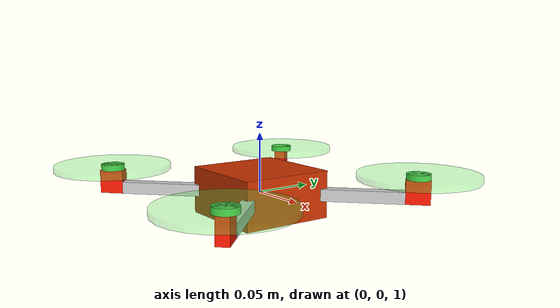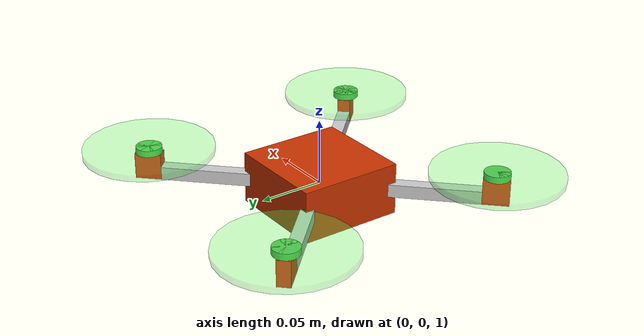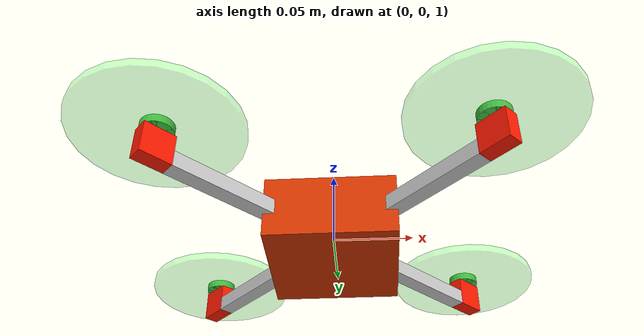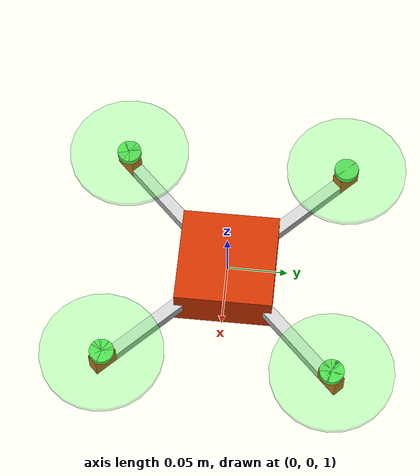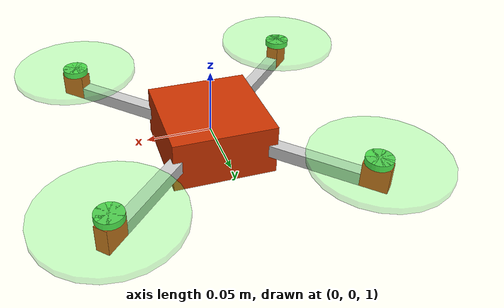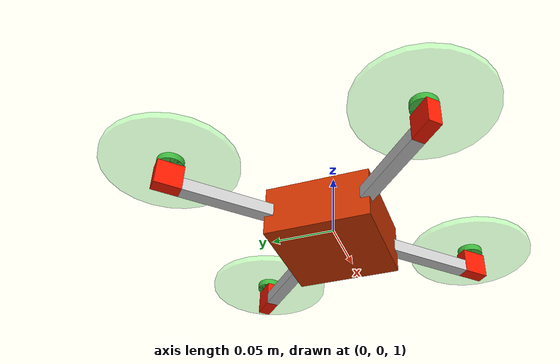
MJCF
<!--
Quadrotor with `+` configuration.
Front: Along body X-axis
-->

<mujoco model="quadrotor">
    <compiler angle="degree" inertiafromgeom="true" coordinate="local"/>
    <option	timestep="0.0004" integrator="RK4"/>

    <default>
        <joint armature="1" damping="1" limited="true"/>
        <geom conaffinity="0" condim="3" density="5.0" friction="1 0.5 0.5" margin="0.01" rgba="0.8 0.6 0.4 1"/>
    </default>

    <asset>
        <texture builtin="gradient" type="skybox" height="100" width="100" rgb1="1 1 1" rgb2="0 0 0"/>
        <texture name="texgeom_quadrotor" builtin="flat" height="1278" mark="cross" markrgb="1 1 1" random="0.01" rgb1="0.8 0.6 0.4" rgb2="0.8 0.6 0.4" type="cube" width="127"/>
        <texture name="texplane_quadrotor" builtin="checker" height="100" width="100" rgb1="0 0 0" rgb2="0.8 0.8 0.8" type="2d"/>
        <material name="MatPlane_quadrotor" reflectance="0.5" shininess="1" specular="1" texrepeat="60 60" texture="texplane_quadrotor"/>
        <material name="geom_quadrotor" texture="texgeom_quadrotor" texuniform="true"/>
    </asset>

    <worldbody>
        <light cutoff="100" diffuse="1 1 1" dir="-0 0 -1.3" directional="true" exponent="1" pos="0 0 1.3" specular=".1 .1 .1"/>
        <geom conaffinity="1" condim="3" material="MatPlane_quadrotor" name="floor" pos="0 0 0" rgba="0.4 0.3 0.3 1" size="5 5 0.2" type="plane"/>
      <body name="agent" pos="0 0 1.">

            <camera name="vision" pos="0 0 .15" quat="0.5 0.5 0.5 0.5" fovy="90"/>
            <camera name="vision_back" pos="0 0 .15" quat="0.5 0.5 -0.5 -0.5" fovy="90"/>

            <site name="agent" rgba="1 0 0 .1"/>
              <geom name="agent_geom" type="box" pos="0 0 0" quat="1 0 0 0" size=".04 .04 .02" rgba=".8 .2 0 1" mass=".1"/>
            <joint armature="0" damping="0" limited="false" margin="0.01" name="root" pos="0 0 0" type="free"/>
            <body quat="0.9238795 0 0 0.3826834">
              <geom name="arm_front0" type="box" pos=".08 0 0" size=".04 .005 .005" quat="1 0 0 0" rgba=".8 .8 .8 1" mass=".02"/>
            <geom name="arm_back0" type="box" pos="-.08 0 0" size=".04 .005 .005" quat="0 0 0 1" rgba=".8 .8 .8 1" mass=".02"/>
            <geom name="arm_left0" type="box" pos="0 .08 0" size=".04 .005 .005" quat=".707 0 0 .707" rgba=".8 .8 .8 1" mass=".02"/>
            <geom name="arm_right0" type="box" pos="0 -.08 0" size=".04 .005 .005" quat=".707 0 0 -.707" rgba=".8 .8 .8 1" mass=".02"/>
              <body name="arm_front1" pos=".12 0 0">
                <geom type="box" pos=".01 0 .005" size=".01 .005 .01" quat="1 0 0 0" rgba="1 .1 0 1" mass=".02"/>
                <body name="thruster0" pos="0.01 0 0.015">
                    <geom type="cylinder" pos="0 0 .0025" size=".05 .0025" quat="1 0 0 0" rgba=".3 1 .3 0.3" mass=".005"/>
                    <site name="motor0" type="cylinder" pos="0 0 .0025" size=".01 .0025" quat="1 0 0 0" rgba=".3 .8 .3 1"/>
                </body>
            </body>

            <body name="arm_back1" pos="-.12 0 0">
                <geom type="box" pos="-.01 0 .005" size=".01 .005 .01" quat="0 0 0 1" rgba="1 .1 0 1" mass=".02"/>
                <body name="thruster1" pos="-0.01 0 .015">
                    <geom type="cylinder" pos="0 0 .0025" size=".05 .0025" quat="1 0 0 0" rgba=".3 1 .3 0.3" mass=".005"/>
                    <site name="motor1" type="cylinder" pos="0 0 .0025" size=".01 .0025" quat="1 0 0 0" rgba=".3 .8 .3 1"/>
                </body>
            </body>

            <body name="arm_left1" pos="0 .12 0">
                <geom type="box" pos="0 .01 .005" size=".01 .005 .01" quat=".7071068 0 0 .7071068" rgba="1 .1 0 1" mass=".02"/>
                <body name="thruster2" pos="0 0.01 0.015">
                    <geom type="cylinder" pos="0 0 .0025" size=".05 .0025" quat="1 0 0 0" rgba=".3 1 .3 0.3" mass=".005"/>
                    <site name="motor2" type="cylinder" pos="0 0 .0025" size=".01 0.0025" quat="1 0 0 0" rgba=".3 .8 .3 1"/>
                </body>
            </body>

            <body name="arm_right1" pos="0 -.12 0">
                <geom type="box" pos="0 -.01 .005" size=".01 .005 .01" quat=".7071068 0 0 -.7071068" rgba="1 .1 0 1" mass=".02"/>
                <body name="thruster3" pos="0 -0.01 .015">
                    <geom type="cylinder" pos="0 0 .0025" size=".05 .0025" quat="1 0 0 0" rgba=".3 1 .3 0.3" mass=".005"/>
                    <site type="cylinder" pos="0 0 .0025" size=".01 .0025" quat="1 0 0 0" rgba=".3 .8 .3 1" name="motor3"/>
                </body>
            </body>
            </body>
      </body>
    </worldbody>
 <sensor>
      <!-- Used for observation -->
      <accelerometer site="agent" name="accelerometer"/>
      <velocimeter site="agent" name="velocimeter"/>
      <gyro site="agent" name="gyro"/>
      <magnetometer site="agent" name="magnetometer"/>

      <!-- Used for intrinsic constraints -->
      <subtreecom body="agent" name="subtreecom"/>
      <subtreelinvel body="agent" name="subtreelinvel"/>
      <subtreeangmom body="agent" name="subtreeangmom"/>
  </sensor>
    <actuator>
        <motor ctrllimited="true" ctrlrange="0 1" gear="0  0. 2.  0. 0. -0.02" site="motor0"/>
        <motor ctrllimited="true" ctrlrange="0 1" gear="0  0. 2.  0. 0. -0.02" site="motor1"/>
        <motor ctrllimited="true" ctrlrange="0 1" gear="0  0. 2.  0. 0.  0.02" site="motor2"/>
        <motor ctrllimited="true" ctrlrange="0 1" gear="0  0. 2.  0. 0.  0.02" site="motor3"/>
    </actuator>

</mujoco>
